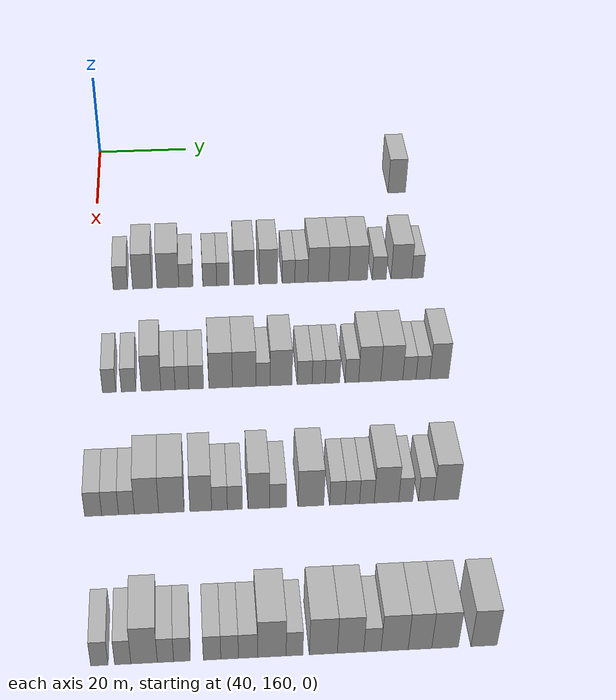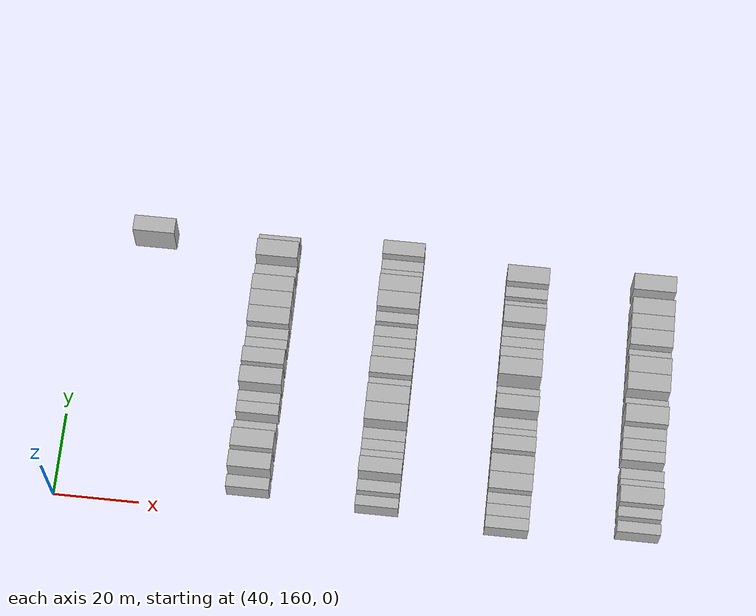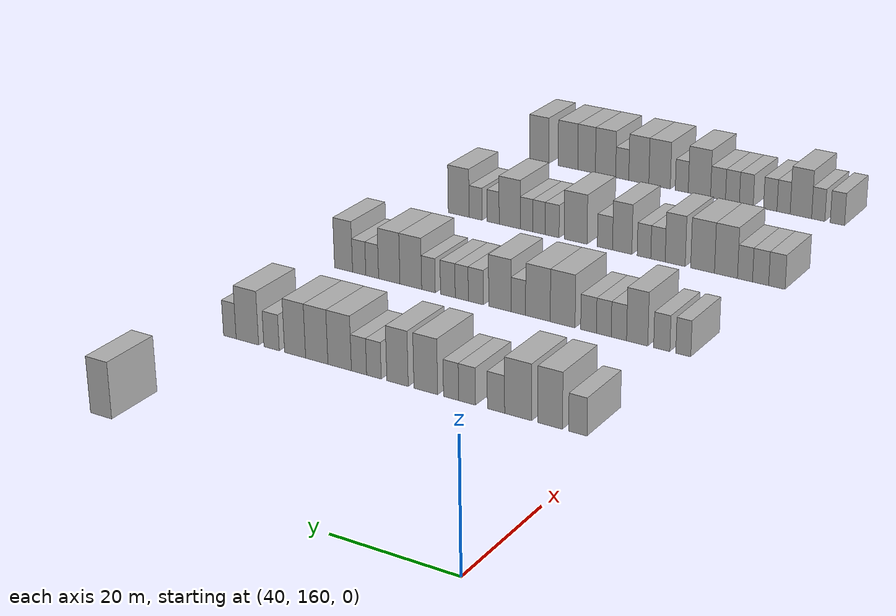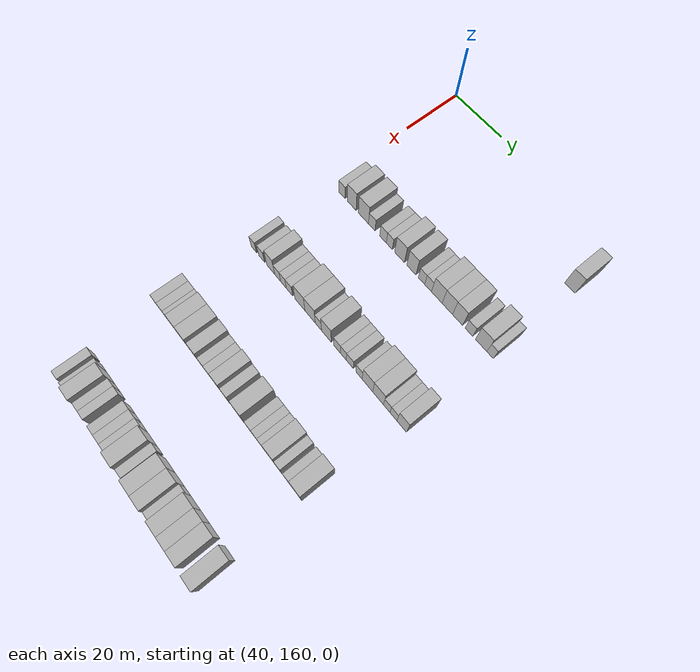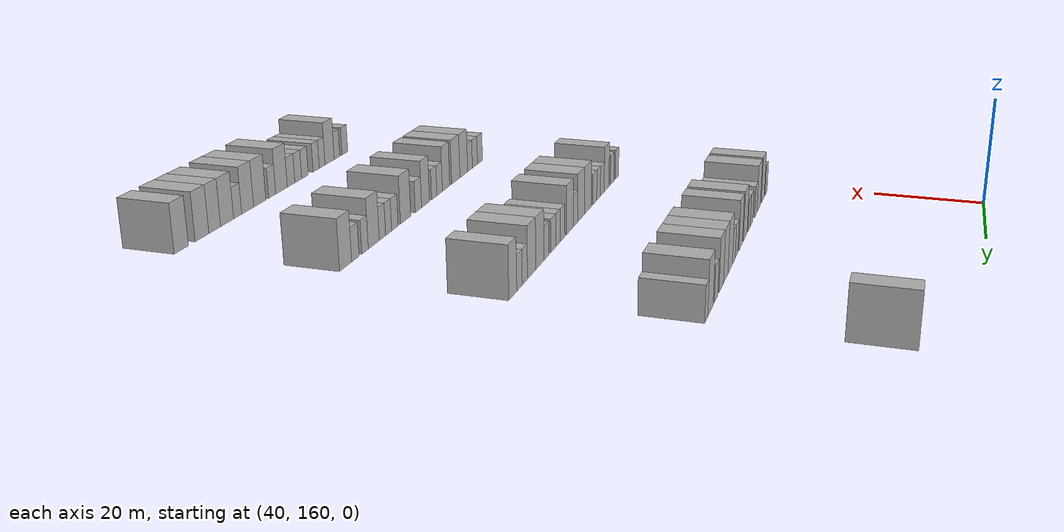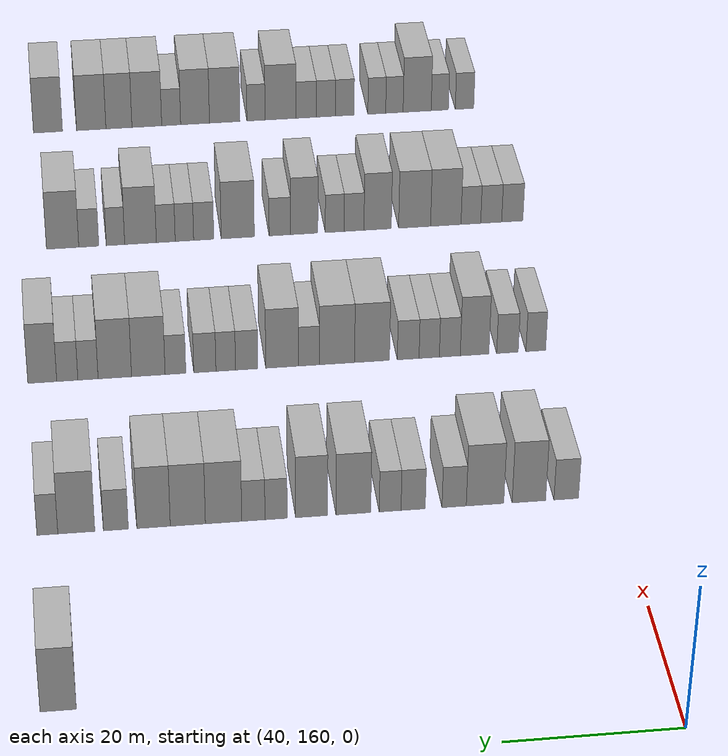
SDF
<sdf version="1.6">
 <world name="default">
  <model name="building_394">
   <static>1</static>
   <pose>55.0000 226.9714 0 0.000000 0.000000 0.000000</pose>
   <link name="link">
    <pose>0 0 4.50 0 0 0</pose>
    <collision name="collision"><geometry><box><size>10.0000 3.9252 9.0000</size></box></geometry></collision>
    <visual name="visual">
     <cast_shadows>0</cast_shadows>
     <geometry><box><size>10.0000 3.9252 9.0000</size></box></geometry>
     <material>
      <script>
       <uri>model://HANNAS_wall/materials/scripts</uri>
       <uri>model://HANNAS_wall/materials/textures</uri>
       <name>vrc/HANNAS_wall</name>
      </script>
     </material>
    </visual>
   </link>
  </model>
  <model name="building_606">
   <static>1</static>
   <pose>85.0000 165.7432 0 0.000000 0.000000 0.000000</pose>
   <link name="link">
    <pose>0 0 3.00 0 0 0</pose>
    <collision name="collision"><geometry><box><size>10.0000 2.9503 6.0000</size></box></geometry></collision>
    <visual name="visual">
     <cast_shadows>0</cast_shadows>
     <geometry><box><size>10.0000 2.9503 6.0000</size></box></geometry>
     <material>
      <script>
       <uri>model://HANNAS_wall/materials/scripts</uri>
       <uri>model://HANNAS_wall/materials/textures</uri>
       <name>vrc/HANNAS_wall</name>
      </script>
     </material>
    </visual>
   </link>
  </model>
  <model name="building_607">
   <static>1</static>
   <pose>85.0000 170.2305 0 0.000000 0.000000 0.000000</pose>
   <link name="link">
    <pose>0 0 4.50 0 0 0</pose>
    <collision name="collision"><geometry><box><size>10.0000 4.0242 9.0000</size></box></geometry></collision>
    <visual name="visual">
     <cast_shadows>0</cast_shadows>
     <geometry><box><size>10.0000 4.0242 9.0000</size></box></geometry>
     <material>
      <script>
       <uri>model://HANNAS_wall/materials/scripts</uri>
       <uri>model://HANNAS_wall/materials/textures</uri>
       <name>vrc/HANNAS_wall</name>
      </script>
     </material>
    </visual>
   </link>
  </model>
  <model name="building_608">
   <static>1</static>
   <pose>85.0000 175.4877 0 0.000000 0.000000 0.000000</pose>
   <link name="link">
    <pose>0 0 4.50 0 0 0</pose>
    <collision name="collision"><geometry><box><size>10.0000 4.4902 9.0000</size></box></geometry></collision>
    <visual name="visual">
     <cast_shadows>0</cast_shadows>
     <geometry><box><size>10.0000 4.4902 9.0000</size></box></geometry>
     <material>
      <script>
       <uri>model://HANNAS_wall/materials/scripts</uri>
       <uri>model://HANNAS_wall/materials/textures</uri>
       <name>vrc/HANNAS_wall</name>
      </script>
     </material>
    </visual>
   </link>
  </model>
  <model name="building_609">
   <static>1</static>
   <pose>85.0000 179.1829 0 0.000000 0.000000 0.000000</pose>
   <link name="link">
    <pose>0 0 3.00 0 0 0</pose>
    <collision name="collision"><geometry><box><size>10.0000 2.9001 6.0000</size></box></geometry></collision>
    <visual name="visual">
     <cast_shadows>0</cast_shadows>
     <geometry><box><size>10.0000 2.9001 6.0000</size></box></geometry>
     <material>
      <script>
       <uri>model://HANNAS_wall/materials/scripts</uri>
       <uri>model://HANNAS_wall/materials/textures</uri>
       <name>vrc/HANNAS_wall</name>
      </script>
     </material>
    </visual>
   </link>
  </model>
  <model name="building_610">
   <static>1</static>
   <pose>85.0000 184.0726 0 0.000000 0.000000 0.000000</pose>
   <link name="link">
    <pose>0 0 3.00 0 0 0</pose>
    <collision name="collision"><geometry><box><size>10.0000 2.8794 6.0000</size></box></geometry></collision>
    <visual name="visual">
     <cast_shadows>0</cast_shadows>
     <geometry><box><size>10.0000 2.8794 6.0000</size></box></geometry>
     <material>
      <script>
       <uri>model://HANNAS_wall/materials/scripts</uri>
       <uri>model://HANNAS_wall/materials/textures</uri>
       <name>vrc/HANNAS_wall</name>
      </script>
     </material>
    </visual>
   </link>
  </model>
  <model name="building_611">
   <static>1</static>
   <pose>85.0000 186.8120 0 0.000000 0.000000 0.000000</pose>
   <link name="link">
    <pose>0 0 3.00 0 0 0</pose>
    <collision name="collision"><geometry><box><size>10.0000 2.5993 6.0000</size></box></geometry></collision>
    <visual name="visual">
     <cast_shadows>0</cast_shadows>
     <geometry><box><size>10.0000 2.5993 6.0000</size></box></geometry>
     <material>
      <script>
       <uri>model://HANNAS_wall/materials/scripts</uri>
       <uri>model://HANNAS_wall/materials/textures</uri>
       <name>vrc/HANNAS_wall</name>
      </script>
     </material>
    </visual>
   </link>
  </model>
  <model name="building_612">
   <static>1</static>
   <pose>85.0000 191.1783 0 0.000000 0.000000 0.000000</pose>
   <link name="link">
    <pose>0 0 4.50 0 0 0</pose>
    <collision name="collision"><geometry><box><size>10.0000 4.1332 9.0000</size></box></geometry></collision>
    <visual name="visual">
     <cast_shadows>0</cast_shadows>
     <geometry><box><size>10.0000 4.1332 9.0000</size></box></geometry>
     <material>
      <script>
       <uri>model://HANNAS_wall/materials/scripts</uri>
       <uri>model://HANNAS_wall/materials/textures</uri>
       <name>vrc/HANNAS_wall</name>
      </script>
     </material>
    </visual>
   </link>
  </model>
  <model name="building_613">
   <static>1</static>
   <pose>85.0000 196.1357 0 0.000000 0.000000 0.000000</pose>
   <link name="link">
    <pose>0 0 4.50 0 0 0</pose>
    <collision name="collision"><geometry><box><size>10.0000 3.7818 9.0000</size></box></geometry></collision>
    <visual name="visual">
     <cast_shadows>0</cast_shadows>
     <geometry><box><size>10.0000 3.7818 9.0000</size></box></geometry>
     <material>
      <script>
       <uri>model://HANNAS_wall/materials/scripts</uri>
       <uri>model://HANNAS_wall/materials/textures</uri>
       <name>vrc/HANNAS_wall</name>
      </script>
     </material>
    </visual>
   </link>
  </model>
  <model name="building_614">
   <static>1</static>
   <pose>85.0000 200.3365 0 0.000000 0.000000 0.000000</pose>
   <link name="link">
    <pose>0 0 3.00 0 0 0</pose>
    <collision name="collision"><geometry><box><size>10.0000 2.6197 6.0000</size></box></geometry></collision>
    <visual name="visual">
     <cast_shadows>0</cast_shadows>
     <geometry><box><size>10.0000 2.6197 6.0000</size></box></geometry>
     <material>
      <script>
       <uri>model://HANNAS_wall/materials/scripts</uri>
       <uri>model://HANNAS_wall/materials/textures</uri>
       <name>vrc/HANNAS_wall</name>
      </script>
     </material>
    </visual>
   </link>
  </model>
  <model name="building_615">
   <static>1</static>
   <pose>85.0000 203.0154 0 0.000000 0.000000 0.000000</pose>
   <link name="link">
    <pose>0 0 3.00 0 0 0</pose>
    <collision name="collision"><geometry><box><size>10.0000 2.7382 6.0000</size></box></geometry></collision>
    <visual name="visual">
     <cast_shadows>0</cast_shadows>
     <geometry><box><size>10.0000 2.7382 6.0000</size></box></geometry>
     <material>
      <script>
       <uri>model://HANNAS_wall/materials/scripts</uri>
       <uri>model://HANNAS_wall/materials/textures</uri>
       <name>vrc/HANNAS_wall</name>
      </script>
     </material>
    </visual>
   </link>
  </model>
  <model name="building_616">
   <static>1</static>
   <pose>85.0000 206.5257 0 0.000000 0.000000 0.000000</pose>
   <link name="link">
    <pose>0 0 4.50 0 0 0</pose>
    <collision name="collision"><geometry><box><size>10.0000 4.2824 9.0000</size></box></geometry></collision>
    <visual name="visual">
     <cast_shadows>0</cast_shadows>
     <geometry><box><size>10.0000 4.2824 9.0000</size></box></geometry>
     <material>
      <script>
       <uri>model://HANNAS_wall/materials/scripts</uri>
       <uri>model://HANNAS_wall/materials/textures</uri>
       <name>vrc/HANNAS_wall</name>
      </script>
     </material>
    </visual>
   </link>
  </model>
  <model name="building_617">
   <static>1</static>
   <pose>85.0000 210.7302 0 0.000000 0.000000 0.000000</pose>
   <link name="link">
    <pose>0 0 4.50 0 0 0</pose>
    <collision name="collision"><geometry><box><size>10.0000 4.1267 9.0000</size></box></geometry></collision>
    <visual name="visual">
     <cast_shadows>0</cast_shadows>
     <geometry><box><size>10.0000 4.1267 9.0000</size></box></geometry>
     <material>
      <script>
       <uri>model://HANNAS_wall/materials/scripts</uri>
       <uri>model://HANNAS_wall/materials/textures</uri>
       <name>vrc/HANNAS_wall</name>
      </script>
     </material>
    </visual>
   </link>
  </model>
  <model name="building_618">
   <static>1</static>
   <pose>85.0000 214.7539 0 0.000000 0.000000 0.000000</pose>
   <link name="link">
    <pose>0 0 4.50 0 0 0</pose>
    <collision name="collision"><geometry><box><size>10.0000 3.9207 9.0000</size></box></geometry></collision>
    <visual name="visual">
     <cast_shadows>0</cast_shadows>
     <geometry><box><size>10.0000 3.9207 9.0000</size></box></geometry>
     <material>
      <script>
       <uri>model://HANNAS_wall/materials/scripts</uri>
       <uri>model://HANNAS_wall/materials/textures</uri>
       <name>vrc/HANNAS_wall</name>
      </script>
     </material>
    </visual>
   </link>
  </model>
  <model name="building_619">
   <static>1</static>
   <pose>85.0000 219.1729 0 0.000000 0.000000 0.000000</pose>
   <link name="link">
    <pose>0 0 3.00 0 0 0</pose>
    <collision name="collision"><geometry><box><size>10.0000 2.9173 6.0000</size></box></geometry></collision>
    <visual name="visual">
     <cast_shadows>0</cast_shadows>
     <geometry><box><size>10.0000 2.9173 6.0000</size></box></geometry>
     <material>
      <script>
       <uri>model://HANNAS_wall/materials/scripts</uri>
       <uri>model://HANNAS_wall/materials/textures</uri>
       <name>vrc/HANNAS_wall</name>
      </script>
     </material>
    </visual>
   </link>
  </model>
  <model name="building_620">
   <static>1</static>
   <pose>85.0000 223.7916 0 0.000000 0.000000 0.000000</pose>
   <link name="link">
    <pose>0 0 4.50 0 0 0</pose>
    <collision name="collision"><geometry><box><size>10.0000 4.3200 9.0000</size></box></geometry></collision>
    <visual name="visual">
     <cast_shadows>0</cast_shadows>
     <geometry><box><size>10.0000 4.3200 9.0000</size></box></geometry>
     <material>
      <script>
       <uri>model://HANNAS_wall/materials/scripts</uri>
       <uri>model://HANNAS_wall/materials/textures</uri>
       <name>vrc/HANNAS_wall</name>
      </script>
     </material>
    </visual>
   </link>
  </model>
  <model name="building_621">
   <static>1</static>
   <pose>85.0000 227.1658 0 0.000000 0.000000 0.000000</pose>
   <link name="link">
    <pose>0 0 3.00 0 0 0</pose>
    <collision name="collision"><geometry><box><size>10.0000 2.4284 6.0000</size></box></geometry></collision>
    <visual name="visual">
     <cast_shadows>0</cast_shadows>
     <geometry><box><size>10.0000 2.4284 6.0000</size></box></geometry>
     <material>
      <script>
       <uri>model://HANNAS_wall/materials/scripts</uri>
       <uri>model://HANNAS_wall/materials/textures</uri>
       <name>vrc/HANNAS_wall</name>
      </script>
     </material>
    </visual>
   </link>
  </model>
  <model name="building_825">
   <static>1</static>
   <pose>115.0000 164.1774 0 0.000000 0.000000 0.000000</pose>
   <link name="link">
    <pose>0 0 3.00 0 0 0</pose>
    <collision name="collision"><geometry><box><size>10.0000 2.5332 6.0000</size></box></geometry></collision>
    <visual name="visual">
     <cast_shadows>0</cast_shadows>
     <geometry><box><size>10.0000 2.5332 6.0000</size></box></geometry>
     <material>
      <script>
       <uri>model://HANNAS_wall/materials/scripts</uri>
       <uri>model://HANNAS_wall/materials/textures</uri>
       <name>vrc/HANNAS_wall</name>
      </script>
     </material>
    </visual>
   </link>
  </model>
  <model name="building_826">
   <static>1</static>
   <pose>115.0000 167.8308 0 0.000000 0.000000 0.000000</pose>
   <link name="link">
    <pose>0 0 3.00 0 0 0</pose>
    <collision name="collision"><geometry><box><size>10.0000 2.7736 6.0000</size></box></geometry></collision>
    <visual name="visual">
     <cast_shadows>0</cast_shadows>
     <geometry><box><size>10.0000 2.7736 6.0000</size></box></geometry>
     <material>
      <script>
       <uri>model://HANNAS_wall/materials/scripts</uri>
       <uri>model://HANNAS_wall/materials/textures</uri>
       <name>vrc/HANNAS_wall</name>
      </script>
     </material>
    </visual>
   </link>
  </model>
  <model name="building_827">
   <static>1</static>
   <pose>115.0000 172.0556 0 0.000000 0.000000 0.000000</pose>
   <link name="link">
    <pose>0 0 4.50 0 0 0</pose>
    <collision name="collision"><geometry><box><size>10.0000 3.6760 9.0000</size></box></geometry></collision>
    <visual name="visual">
     <cast_shadows>0</cast_shadows>
     <geometry><box><size>10.0000 3.6760 9.0000</size></box></geometry>
     <material>
      <script>
       <uri>model://HANNAS_wall/materials/scripts</uri>
       <uri>model://HANNAS_wall/materials/textures</uri>
       <name>vrc/HANNAS_wall</name>
      </script>
     </material>
    </visual>
   </link>
  </model>
  <model name="building_828">
   <static>1</static>
   <pose>115.0000 175.2334 0 0.000000 0.000000 0.000000</pose>
   <link name="link">
    <pose>0 0 3.00 0 0 0</pose>
    <collision name="collision"><geometry><box><size>10.0000 2.6795 6.0000</size></box></geometry></collision>
    <visual name="visual">
     <cast_shadows>0</cast_shadows>
     <geometry><box><size>10.0000 2.6795 6.0000</size></box></geometry>
     <material>
      <script>
       <uri>model://HANNAS_wall/materials/scripts</uri>
       <uri>model://HANNAS_wall/materials/textures</uri>
       <name>vrc/HANNAS_wall</name>
      </script>
     </material>
    </visual>
   </link>
  </model>
  <model name="building_829">
   <static>1</static>
   <pose>115.0000 177.8731 0 0.000000 0.000000 0.000000</pose>
   <link name="link">
    <pose>0 0 3.00 0 0 0</pose>
    <collision name="collision"><geometry><box><size>10.0000 2.5999 6.0000</size></box></geometry></collision>
    <visual name="visual">
     <cast_shadows>0</cast_shadows>
     <geometry><box><size>10.0000 2.5999 6.0000</size></box></geometry>
     <material>
      <script>
       <uri>model://HANNAS_wall/materials/scripts</uri>
       <uri>model://HANNAS_wall/materials/textures</uri>
       <name>vrc/HANNAS_wall</name>
      </script>
     </material>
    </visual>
   </link>
  </model>
  <model name="building_830">
   <static>1</static>
   <pose>115.0000 180.5639 0 0.000000 0.000000 0.000000</pose>
   <link name="link">
    <pose>0 0 3.00 0 0 0</pose>
    <collision name="collision"><geometry><box><size>10.0000 2.7818 6.0000</size></box></geometry></collision>
    <visual name="visual">
     <cast_shadows>0</cast_shadows>
     <geometry><box><size>10.0000 2.7818 6.0000</size></box></geometry>
     <material>
      <script>
       <uri>model://HANNAS_wall/materials/scripts</uri>
       <uri>model://HANNAS_wall/materials/textures</uri>
       <name>vrc/HANNAS_wall</name>
      </script>
     </material>
    </visual>
   </link>
  </model>
  <model name="building_831">
   <static>1</static>
   <pose>115.0000 185.1797 0 0.000000 0.000000 0.000000</pose>
   <link name="link">
    <pose>0 0 4.50 0 0 0</pose>
    <collision name="collision"><geometry><box><size>10.0000 4.4497 9.0000</size></box></geometry></collision>
    <visual name="visual">
     <cast_shadows>0</cast_shadows>
     <geometry><box><size>10.0000 4.4497 9.0000</size></box></geometry>
     <material>
      <script>
       <uri>model://HANNAS_wall/materials/scripts</uri>
       <uri>model://HANNAS_wall/materials/textures</uri>
       <name>vrc/HANNAS_wall</name>
      </script>
     </material>
    </visual>
   </link>
  </model>
  <model name="building_832">
   <static>1</static>
   <pose>115.0000 189.6412 0 0.000000 0.000000 0.000000</pose>
   <link name="link">
    <pose>0 0 4.50 0 0 0</pose>
    <collision name="collision"><geometry><box><size>10.0000 4.4733 9.0000</size></box></geometry></collision>
    <visual name="visual">
     <cast_shadows>0</cast_shadows>
     <geometry><box><size>10.0000 4.4733 9.0000</size></box></geometry>
     <material>
      <script>
       <uri>model://HANNAS_wall/materials/scripts</uri>
       <uri>model://HANNAS_wall/materials/textures</uri>
       <name>vrc/HANNAS_wall</name>
      </script>
     </material>
    </visual>
   </link>
  </model>
  <model name="building_833">
   <static>1</static>
   <pose>115.0000 193.2187 0 0.000000 0.000000 0.000000</pose>
   <link name="link">
    <pose>0 0 3.00 0 0 0</pose>
    <collision name="collision"><geometry><box><size>10.0000 2.6816 6.0000</size></box></geometry></collision>
    <visual name="visual">
     <cast_shadows>0</cast_shadows>
     <geometry><box><size>10.0000 2.6816 6.0000</size></box></geometry>
     <material>
      <script>
       <uri>model://HANNAS_wall/materials/scripts</uri>
       <uri>model://HANNAS_wall/materials/textures</uri>
       <name>vrc/HANNAS_wall</name>
      </script>
     </material>
    </visual>
   </link>
  </model>
  <model name="building_834">
   <static>1</static>
   <pose>115.0000 196.6290 0 0.000000 0.000000 0.000000</pose>
   <link name="link">
    <pose>0 0 4.50 0 0 0</pose>
    <collision name="collision"><geometry><box><size>10.0000 4.1389 9.0000</size></box></geometry></collision>
    <visual name="visual">
     <cast_shadows>0</cast_shadows>
     <geometry><box><size>10.0000 4.1389 9.0000</size></box></geometry>
     <material>
      <script>
       <uri>model://HANNAS_wall/materials/scripts</uri>
       <uri>model://HANNAS_wall/materials/textures</uri>
       <name>vrc/HANNAS_wall</name>
      </script>
     </material>
    </visual>
   </link>
  </model>
  <model name="building_835">
   <static>1</static>
   <pose>115.0000 201.1109 0 0.000000 0.000000 0.000000</pose>
   <link name="link">
    <pose>0 0 3.00 0 0 0</pose>
    <collision name="collision"><geometry><box><size>10.0000 2.8248 6.0000</size></box></geometry></collision>
    <visual name="visual">
     <cast_shadows>0</cast_shadows>
     <geometry><box><size>10.0000 2.8248 6.0000</size></box></geometry>
     <material>
      <script>
       <uri>model://HANNAS_wall/materials/scripts</uri>
       <uri>model://HANNAS_wall/materials/textures</uri>
       <name>vrc/HANNAS_wall</name>
      </script>
     </material>
    </visual>
   </link>
  </model>
  <model name="building_836">
   <static>1</static>
   <pose>115.0000 203.7615 0 0.000000 0.000000 0.000000</pose>
   <link name="link">
    <pose>0 0 3.00 0 0 0</pose>
    <collision name="collision"><geometry><box><size>10.0000 2.4764 6.0000</size></box></geometry></collision>
    <visual name="visual">
     <cast_shadows>0</cast_shadows>
     <geometry><box><size>10.0000 2.4764 6.0000</size></box></geometry>
     <material>
      <script>
       <uri>model://HANNAS_wall/materials/scripts</uri>
       <uri>model://HANNAS_wall/materials/textures</uri>
       <name>vrc/HANNAS_wall</name>
      </script>
     </material>
    </visual>
   </link>
  </model>
  <model name="building_837">
   <static>1</static>
   <pose>115.0000 206.4011 0 0.000000 0.000000 0.000000</pose>
   <link name="link">
    <pose>0 0 3.00 0 0 0</pose>
    <collision name="collision"><geometry><box><size>10.0000 2.8028 6.0000</size></box></geometry></collision>
    <visual name="visual">
     <cast_shadows>0</cast_shadows>
     <geometry><box><size>10.0000 2.8028 6.0000</size></box></geometry>
     <material>
      <script>
       <uri>model://HANNAS_wall/materials/scripts</uri>
       <uri>model://HANNAS_wall/materials/textures</uri>
       <name>vrc/HANNAS_wall</name>
      </script>
     </material>
    </visual>
   </link>
  </model>
  <model name="building_838">
   <static>1</static>
   <pose>115.0000 210.1084 0 0.000000 0.000000 0.000000</pose>
   <link name="link">
    <pose>0 0 3.00 0 0 0</pose>
    <collision name="collision"><geometry><box><size>10.0000 2.6118 6.0000</size></box></geometry></collision>
    <visual name="visual">
     <cast_shadows>0</cast_shadows>
     <geometry><box><size>10.0000 2.6118 6.0000</size></box></geometry>
     <material>
      <script>
       <uri>model://HANNAS_wall/materials/scripts</uri>
       <uri>model://HANNAS_wall/materials/textures</uri>
       <name>vrc/HANNAS_wall</name>
      </script>
     </material>
    </visual>
   </link>
  </model>
  <model name="building_839">
   <static>1</static>
   <pose>115.0000 213.5273 0 0.000000 0.000000 0.000000</pose>
   <link name="link">
    <pose>0 0 4.50 0 0 0</pose>
    <collision name="collision"><geometry><box><size>10.0000 4.2261 9.0000</size></box></geometry></collision>
    <visual name="visual">
     <cast_shadows>0</cast_shadows>
     <geometry><box><size>10.0000 4.2261 9.0000</size></box></geometry>
     <material>
      <script>
       <uri>model://HANNAS_wall/materials/scripts</uri>
       <uri>model://HANNAS_wall/materials/textures</uri>
       <name>vrc/HANNAS_wall</name>
      </script>
     </material>
    </visual>
   </link>
  </model>
  <model name="building_840">
   <static>1</static>
   <pose>115.0000 217.7419 0 0.000000 0.000000 0.000000</pose>
   <link name="link">
    <pose>0 0 4.50 0 0 0</pose>
    <collision name="collision"><geometry><box><size>10.0000 4.2031 9.0000</size></box></geometry></collision>
    <visual name="visual">
     <cast_shadows>0</cast_shadows>
     <geometry><box><size>10.0000 4.2031 9.0000</size></box></geometry>
     <material>
      <script>
       <uri>model://HANNAS_wall/materials/scripts</uri>
       <uri>model://HANNAS_wall/materials/textures</uri>
       <name>vrc/HANNAS_wall</name>
      </script>
     </material>
    </visual>
   </link>
  </model>
  <model name="building_841">
   <static>1</static>
   <pose>115.0000 221.1110 0 0.000000 0.000000 0.000000</pose>
   <link name="link">
    <pose>0 0 3.00 0 0 0</pose>
    <collision name="collision"><geometry><box><size>10.0000 2.5350 6.0000</size></box></geometry></collision>
    <visual name="visual">
     <cast_shadows>0</cast_shadows>
     <geometry><box><size>10.0000 2.5350 6.0000</size></box></geometry>
     <material>
      <script>
       <uri>model://HANNAS_wall/materials/scripts</uri>
       <uri>model://HANNAS_wall/materials/textures</uri>
       <name>vrc/HANNAS_wall</name>
      </script>
     </material>
    </visual>
   </link>
  </model>
  <model name="building_842">
   <static>1</static>
   <pose>115.0000 223.7000 0 0.000000 0.000000 0.000000</pose>
   <link name="link">
    <pose>0 0 3.00 0 0 0</pose>
    <collision name="collision"><geometry><box><size>10.0000 2.6429 6.0000</size></box></geometry></collision>
    <visual name="visual">
     <cast_shadows>0</cast_shadows>
     <geometry><box><size>10.0000 2.6429 6.0000</size></box></geometry>
     <material>
      <script>
       <uri>model://HANNAS_wall/materials/scripts</uri>
       <uri>model://HANNAS_wall/materials/textures</uri>
       <name>vrc/HANNAS_wall</name>
      </script>
     </material>
    </visual>
   </link>
  </model>
  <model name="building_843">
   <static>1</static>
   <pose>115.0000 226.8285 0 0.000000 0.000000 0.000000</pose>
   <link name="link">
    <pose>0 0 4.50 0 0 0</pose>
    <collision name="collision"><geometry><box><size>10.0000 3.6141 9.0000</size></box></geometry></collision>
    <visual name="visual">
     <cast_shadows>0</cast_shadows>
     <geometry><box><size>10.0000 3.6141 9.0000</size></box></geometry>
     <material>
      <script>
       <uri>model://HANNAS_wall/materials/scripts</uri>
       <uri>model://HANNAS_wall/materials/textures</uri>
       <name>vrc/HANNAS_wall</name>
      </script>
     </material>
    </visual>
   </link>
  </model>
  <model name="building_1042">
   <static>1</static>
   <pose>145.0000 162.1882 0 0.000000 0.000000 0.000000</pose>
   <link name="link">
    <pose>0 0 3.00 0 0 0</pose>
    <collision name="collision"><geometry><box><size>10.0000 2.9171 6.0000</size></box></geometry></collision>
    <visual name="visual">
     <cast_shadows>0</cast_shadows>
     <geometry><box><size>10.0000 2.9171 6.0000</size></box></geometry>
     <material>
      <script>
       <uri>model://HANNAS_wall/materials/scripts</uri>
       <uri>model://HANNAS_wall/materials/textures</uri>
       <name>vrc/HANNAS_wall</name>
      </script>
     </material>
    </visual>
   </link>
  </model>
  <model name="building_1043">
   <static>1</static>
   <pose>145.0000 165.0874 0 0.000000 0.000000 0.000000</pose>
   <link name="link">
    <pose>0 0 3.00 0 0 0</pose>
    <collision name="collision"><geometry><box><size>10.0000 2.8814 6.0000</size></box></geometry></collision>
    <visual name="visual">
     <cast_shadows>0</cast_shadows>
     <geometry><box><size>10.0000 2.8814 6.0000</size></box></geometry>
     <material>
      <script>
       <uri>model://HANNAS_wall/materials/scripts</uri>
       <uri>model://HANNAS_wall/materials/textures</uri>
       <name>vrc/HANNAS_wall</name>
      </script>
     </material>
    </visual>
   </link>
  </model>
  <model name="building_1044">
   <static>1</static>
   <pose>145.0000 167.8782 0 0.000000 0.000000 0.000000</pose>
   <link name="link">
    <pose>0 0 3.00 0 0 0</pose>
    <collision name="collision"><geometry><box><size>10.0000 2.7003 6.0000</size></box></geometry></collision>
    <visual name="visual">
     <cast_shadows>0</cast_shadows>
     <geometry><box><size>10.0000 2.7003 6.0000</size></box></geometry>
     <material>
      <script>
       <uri>model://HANNAS_wall/materials/scripts</uri>
       <uri>model://HANNAS_wall/materials/textures</uri>
       <name>vrc/HANNAS_wall</name>
      </script>
     </material>
    </visual>
   </link>
  </model>
  <model name="building_1045">
   <static>1</static>
   <pose>145.0000 171.3136 0 0.000000 0.000000 0.000000</pose>
   <link name="link">
    <pose>0 0 4.50 0 0 0</pose>
    <collision name="collision"><geometry><box><size>10.0000 4.1704 9.0000</size></box></geometry></collision>
    <visual name="visual">
     <cast_shadows>0</cast_shadows>
     <geometry><box><size>10.0000 4.1704 9.0000</size></box></geometry>
     <material>
      <script>
       <uri>model://HANNAS_wall/materials/scripts</uri>
       <uri>model://HANNAS_wall/materials/textures</uri>
       <name>vrc/HANNAS_wall</name>
      </script>
     </material>
    </visual>
   </link>
  </model>
  <model name="building_1046">
   <static>1</static>
   <pose>145.0000 175.5829 0 0.000000 0.000000 0.000000</pose>
   <link name="link">
    <pose>0 0 4.50 0 0 0</pose>
    <collision name="collision"><geometry><box><size>10.0000 4.3682 9.0000</size></box></geometry></collision>
    <visual name="visual">
     <cast_shadows>0</cast_shadows>
     <geometry><box><size>10.0000 4.3682 9.0000</size></box></geometry>
     <material>
      <script>
       <uri>model://HANNAS_wall/materials/scripts</uri>
       <uri>model://HANNAS_wall/materials/textures</uri>
       <name>vrc/HANNAS_wall</name>
      </script>
     </material>
    </visual>
   </link>
  </model>
  <model name="building_1047">
   <static>1</static>
   <pose>145.0000 180.6316 0 0.000000 0.000000 0.000000</pose>
   <link name="link">
    <pose>0 0 4.50 0 0 0</pose>
    <collision name="collision"><geometry><box><size>10.0000 3.7293 9.0000</size></box></geometry></collision>
    <visual name="visual">
     <cast_shadows>0</cast_shadows>
     <geometry><box><size>10.0000 3.7293 9.0000</size></box></geometry>
     <material>
      <script>
       <uri>model://HANNAS_wall/materials/scripts</uri>
       <uri>model://HANNAS_wall/materials/textures</uri>
       <name>vrc/HANNAS_wall</name>
      </script>
     </material>
    </visual>
   </link>
  </model>
  <model name="building_1048">
   <static>1</static>
   <pose>145.0000 183.8452 0 0.000000 0.000000 0.000000</pose>
   <link name="link">
    <pose>0 0 3.00 0 0 0</pose>
    <collision name="collision"><geometry><box><size>10.0000 2.6979 6.0000</size></box></geometry></collision>
    <visual name="visual">
     <cast_shadows>0</cast_shadows>
     <geometry><box><size>10.0000 2.6979 6.0000</size></box></geometry>
     <material>
      <script>
       <uri>model://HANNAS_wall/materials/scripts</uri>
       <uri>model://HANNAS_wall/materials/textures</uri>
       <name>vrc/HANNAS_wall</name>
      </script>
     </material>
    </visual>
   </link>
  </model>
  <model name="building_1049">
   <static>1</static>
   <pose>145.0000 186.4806 0 0.000000 0.000000 0.000000</pose>
   <link name="link">
    <pose>0 0 3.00 0 0 0</pose>
    <collision name="collision"><geometry><box><size>10.0000 2.5728 6.0000</size></box></geometry></collision>
    <visual name="visual">
     <cast_shadows>0</cast_shadows>
     <geometry><box><size>10.0000 2.5728 6.0000</size></box></geometry>
     <material>
      <script>
       <uri>model://HANNAS_wall/materials/scripts</uri>
       <uri>model://HANNAS_wall/materials/textures</uri>
       <name>vrc/HANNAS_wall</name>
      </script>
     </material>
    </visual>
   </link>
  </model>
  <model name="building_1050">
   <static>1</static>
   <pose>145.0000 190.6179 0 0.000000 0.000000 0.000000</pose>
   <link name="link">
    <pose>0 0 4.50 0 0 0</pose>
    <collision name="collision"><geometry><box><size>10.0000 3.7019 9.0000</size></box></geometry></collision>
    <visual name="visual">
     <cast_shadows>0</cast_shadows>
     <geometry><box><size>10.0000 3.7019 9.0000</size></box></geometry>
     <material>
      <script>
       <uri>model://HANNAS_wall/materials/scripts</uri>
       <uri>model://HANNAS_wall/materials/textures</uri>
       <name>vrc/HANNAS_wall</name>
      </script>
     </material>
    </visual>
   </link>
  </model>
  <model name="building_1051">
   <static>1</static>
   <pose>145.0000 193.9264 0 0.000000 0.000000 0.000000</pose>
   <link name="link">
    <pose>0 0 3.00 0 0 0</pose>
    <collision name="collision"><geometry><box><size>10.0000 2.9151 6.0000</size></box></geometry></collision>
    <visual name="visual">
     <cast_shadows>0</cast_shadows>
     <geometry><box><size>10.0000 2.9151 6.0000</size></box></geometry>
     <material>
      <script>
       <uri>model://HANNAS_wall/materials/scripts</uri>
       <uri>model://HANNAS_wall/materials/textures</uri>
       <name>vrc/HANNAS_wall</name>
      </script>
     </material>
    </visual>
   </link>
  </model>
  <model name="building_1052">
   <static>1</static>
   <pose>145.0000 199.6255 0 0.000000 0.000000 0.000000</pose>
   <link name="link">
    <pose>0 0 4.50 0 0 0</pose>
    <collision name="collision"><geometry><box><size>10.0000 4.4830 9.0000</size></box></geometry></collision>
    <visual name="visual">
     <cast_shadows>0</cast_shadows>
     <geometry><box><size>10.0000 4.4830 9.0000</size></box></geometry>
     <material>
      <script>
       <uri>model://HANNAS_wall/materials/scripts</uri>
       <uri>model://HANNAS_wall/materials/textures</uri>
       <name>vrc/HANNAS_wall</name>
      </script>
     </material>
    </visual>
   </link>
  </model>
  <model name="building_1053">
   <static>1</static>
   <pose>145.0000 204.2259 0 0.000000 0.000000 0.000000</pose>
   <link name="link">
    <pose>0 0 3.00 0 0 0</pose>
    <collision name="collision"><geometry><box><size>10.0000 2.7179 6.0000</size></box></geometry></collision>
    <visual name="visual">
     <cast_shadows>0</cast_shadows>
     <geometry><box><size>10.0000 2.7179 6.0000</size></box></geometry>
     <material>
      <script>
       <uri>model://HANNAS_wall/materials/scripts</uri>
       <uri>model://HANNAS_wall/materials/textures</uri>
       <name>vrc/HANNAS_wall</name>
      </script>
     </material>
    </visual>
   </link>
  </model>
  <model name="building_1054">
   <static>1</static>
   <pose>145.0000 206.8266 0 0.000000 0.000000 0.000000</pose>
   <link name="link">
    <pose>0 0 3.00 0 0 0</pose>
    <collision name="collision"><geometry><box><size>10.0000 2.4833 6.0000</size></box></geometry></collision>
    <visual name="visual">
     <cast_shadows>0</cast_shadows>
     <geometry><box><size>10.0000 2.4833 6.0000</size></box></geometry>
     <material>
      <script>
       <uri>model://HANNAS_wall/materials/scripts</uri>
       <uri>model://HANNAS_wall/materials/textures</uri>
       <name>vrc/HANNAS_wall</name>
      </script>
     </material>
    </visual>
   </link>
  </model>
  <model name="building_1055">
   <static>1</static>
   <pose>145.0000 209.3391 0 0.000000 0.000000 0.000000</pose>
   <link name="link">
    <pose>0 0 3.00 0 0 0</pose>
    <collision name="collision"><geometry><box><size>10.0000 2.5416 6.0000</size></box></geometry></collision>
    <visual name="visual">
     <cast_shadows>0</cast_shadows>
     <geometry><box><size>10.0000 2.5416 6.0000</size></box></geometry>
     <material>
      <script>
       <uri>model://HANNAS_wall/materials/scripts</uri>
       <uri>model://HANNAS_wall/materials/textures</uri>
       <name>vrc/HANNAS_wall</name>
      </script>
     </material>
    </visual>
   </link>
  </model>
  <model name="building_1056">
   <static>1</static>
   <pose>145.0000 212.7390 0 0.000000 0.000000 0.000000</pose>
   <link name="link">
    <pose>0 0 4.50 0 0 0</pose>
    <collision name="collision"><geometry><box><size>10.0000 4.2582 9.0000</size></box></geometry></collision>
    <visual name="visual">
     <cast_shadows>0</cast_shadows>
     <geometry><box><size>10.0000 4.2582 9.0000</size></box></geometry>
     <material>
      <script>
       <uri>model://HANNAS_wall/materials/scripts</uri>
       <uri>model://HANNAS_wall/materials/textures</uri>
       <name>vrc/HANNAS_wall</name>
      </script>
     </material>
    </visual>
   </link>
  </model>
  <model name="building_1057">
   <static>1</static>
   <pose>145.0000 216.1029 0 0.000000 0.000000 0.000000</pose>
   <link name="link">
    <pose>0 0 3.00 0 0 0</pose>
    <collision name="collision"><geometry><box><size>10.0000 2.4695 6.0000</size></box></geometry></collision>
    <visual name="visual">
     <cast_shadows>0</cast_shadows>
     <geometry><box><size>10.0000 2.4695 6.0000</size></box></geometry>
     <material>
      <script>
       <uri>model://HANNAS_wall/materials/scripts</uri>
       <uri>model://HANNAS_wall/materials/textures</uri>
       <name>vrc/HANNAS_wall</name>
      </script>
     </material>
    </visual>
   </link>
  </model>
  <model name="building_1058">
   <static>1</static>
   <pose>145.0000 219.6802 0 0.000000 0.000000 0.000000</pose>
   <link name="link">
    <pose>0 0 3.00 0 0 0</pose>
    <collision name="collision"><geometry><box><size>10.0000 2.6851 6.0000</size></box></geometry></collision>
    <visual name="visual">
     <cast_shadows>0</cast_shadows>
     <geometry><box><size>10.0000 2.6851 6.0000</size></box></geometry>
     <material>
      <script>
       <uri>model://HANNAS_wall/materials/scripts</uri>
       <uri>model://HANNAS_wall/materials/textures</uri>
       <name>vrc/HANNAS_wall</name>
      </script>
     </material>
    </visual>
   </link>
  </model>
  <model name="building_1059">
   <static>1</static>
   <pose>145.0000 223.1822 0 0.000000 0.000000 0.000000</pose>
   <link name="link">
    <pose>0 0 4.50 0 0 0</pose>
    <collision name="collision"><geometry><box><size>10.0000 4.3189 9.0000</size></box></geometry></collision>
    <visual name="visual">
     <cast_shadows>0</cast_shadows>
     <geometry><box><size>10.0000 4.3189 9.0000</size></box></geometry>
     <material>
      <script>
       <uri>model://HANNAS_wall/materials/scripts</uri>
       <uri>model://HANNAS_wall/materials/textures</uri>
       <name>vrc/HANNAS_wall</name>
      </script>
     </material>
    </visual>
   </link>
  </model>
  <model name="building_1282">
   <static>1</static>
   <pose>175.0000 164.1596 0 0.000000 0.000000 0.000000</pose>
   <link name="link">
    <pose>0 0 3.00 0 0 0</pose>
    <collision name="collision"><geometry><box><size>10.0000 2.6842 6.0000</size></box></geometry></collision>
    <visual name="visual">
     <cast_shadows>0</cast_shadows>
     <geometry><box><size>10.0000 2.6842 6.0000</size></box></geometry>
     <material>
      <script>
       <uri>model://HANNAS_wall/materials/scripts</uri>
       <uri>model://HANNAS_wall/materials/textures</uri>
       <name>vrc/HANNAS_wall</name>
      </script>
     </material>
    </visual>
   </link>
  </model>
  <model name="building_1283">
   <static>1</static>
   <pose>175.0000 167.7578 0 0.000000 0.000000 0.000000</pose>
   <link name="link">
    <pose>0 0 3.00 0 0 0</pose>
    <collision name="collision"><geometry><box><size>10.0000 2.5122 6.0000</size></box></geometry></collision>
    <visual name="visual">
     <cast_shadows>0</cast_shadows>
     <geometry><box><size>10.0000 2.5122 6.0000</size></box></geometry>
     <material>
      <script>
       <uri>model://HANNAS_wall/materials/scripts</uri>
       <uri>model://HANNAS_wall/materials/textures</uri>
       <name>vrc/HANNAS_wall</name>
      </script>
     </material>
    </visual>
   </link>
  </model>
  <model name="building_1284">
   <static>1</static>
   <pose>175.0000 171.0576 0 0.000000 0.000000 0.000000</pose>
   <link name="link">
    <pose>0 0 4.50 0 0 0</pose>
    <collision name="collision"><geometry><box><size>10.0000 4.0875 9.0000</size></box></geometry></collision>
    <visual name="visual">
     <cast_shadows>0</cast_shadows>
     <geometry><box><size>10.0000 4.0875 9.0000</size></box></geometry>
     <material>
      <script>
       <uri>model://HANNAS_wall/materials/scripts</uri>
       <uri>model://HANNAS_wall/materials/textures</uri>
       <name>vrc/HANNAS_wall</name>
      </script>
     </material>
    </visual>
   </link>
  </model>
  <model name="building_1285">
   <static>1</static>
   <pose>175.0000 174.3629 0 0.000000 0.000000 0.000000</pose>
   <link name="link">
    <pose>0 0 3.00 0 0 0</pose>
    <collision name="collision"><geometry><box><size>10.0000 2.5231 6.0000</size></box></geometry></collision>
    <visual name="visual">
     <cast_shadows>0</cast_shadows>
     <geometry><box><size>10.0000 2.5231 6.0000</size></box></geometry>
     <material>
      <script>
       <uri>model://HANNAS_wall/materials/scripts</uri>
       <uri>model://HANNAS_wall/materials/textures</uri>
       <name>vrc/HANNAS_wall</name>
      </script>
     </material>
    </visual>
   </link>
  </model>
  <model name="building_1286">
   <static>1</static>
   <pose>175.0000 176.9214 0 0.000000 0.000000 0.000000</pose>
   <link name="link">
    <pose>0 0 3.00 0 0 0</pose>
    <collision name="collision"><geometry><box><size>10.0000 2.5939 6.0000</size></box></geometry></collision>
    <visual name="visual">
     <cast_shadows>0</cast_shadows>
     <geometry><box><size>10.0000 2.5939 6.0000</size></box></geometry>
     <material>
      <script>
       <uri>model://HANNAS_wall/materials/scripts</uri>
       <uri>model://HANNAS_wall/materials/textures</uri>
       <name>vrc/HANNAS_wall</name>
      </script>
     </material>
    </visual>
   </link>
  </model>
  <model name="building_1287">
   <static>1</static>
   <pose>175.0000 181.5738 0 0.000000 0.000000 0.000000</pose>
   <link name="link">
    <pose>0 0 3.00 0 0 0</pose>
    <collision name="collision"><geometry><box><size>10.0000 2.7108 6.0000</size></box></geometry></collision>
    <visual name="visual">
     <cast_shadows>0</cast_shadows>
     <geometry><box><size>10.0000 2.7108 6.0000</size></box></geometry>
     <material>
      <script>
       <uri>model://HANNAS_wall/materials/scripts</uri>
       <uri>model://HANNAS_wall/materials/textures</uri>
       <name>vrc/HANNAS_wall</name>
      </script>
     </material>
    </visual>
   </link>
  </model>
  <model name="building_1288">
   <static>1</static>
   <pose>175.0000 184.2955 0 0.000000 0.000000 0.000000</pose>
   <link name="link">
    <pose>0 0 3.00 0 0 0</pose>
    <collision name="collision"><geometry><box><size>10.0000 2.7326 6.0000</size></box></geometry></collision>
    <visual name="visual">
     <cast_shadows>0</cast_shadows>
     <geometry><box><size>10.0000 2.7326 6.0000</size></box></geometry>
     <material>
      <script>
       <uri>model://HANNAS_wall/materials/scripts</uri>
       <uri>model://HANNAS_wall/materials/textures</uri>
       <name>vrc/HANNAS_wall</name>
      </script>
     </material>
    </visual>
   </link>
  </model>
  <model name="building_1289">
   <static>1</static>
   <pose>175.0000 187.1412 0 0.000000 0.000000 0.000000</pose>
   <link name="link">
    <pose>0 0 3.00 0 0 0</pose>
    <collision name="collision"><geometry><box><size>10.0000 2.9587 6.0000</size></box></geometry></collision>
    <visual name="visual">
     <cast_shadows>0</cast_shadows>
     <geometry><box><size>10.0000 2.9587 6.0000</size></box></geometry>
     <material>
      <script>
       <uri>model://HANNAS_wall/materials/scripts</uri>
       <uri>model://HANNAS_wall/materials/textures</uri>
       <name>vrc/HANNAS_wall</name>
      </script>
     </material>
    </visual>
   </link>
  </model>
  <model name="building_1290">
   <static>1</static>
   <pose>175.0000 190.8504 0 0.000000 0.000000 0.000000</pose>
   <link name="link">
    <pose>0 0 4.50 0 0 0</pose>
    <collision name="collision"><geometry><box><size>10.0000 4.4597 9.0000</size></box></geometry></collision>
    <visual name="visual">
     <cast_shadows>0</cast_shadows>
     <geometry><box><size>10.0000 4.4597 9.0000</size></box></geometry>
     <material>
      <script>
       <uri>model://HANNAS_wall/materials/scripts</uri>
       <uri>model://HANNAS_wall/materials/textures</uri>
       <name>vrc/HANNAS_wall</name>
      </script>
     </material>
    </visual>
   </link>
  </model>
  <model name="building_1291">
   <static>1</static>
   <pose>175.0000 194.3885 0 0.000000 0.000000 0.000000</pose>
   <link name="link">
    <pose>0 0 3.00 0 0 0</pose>
    <collision name="collision"><geometry><box><size>10.0000 2.6165 6.0000</size></box></geometry></collision>
    <visual name="visual">
     <cast_shadows>0</cast_shadows>
     <geometry><box><size>10.0000 2.6165 6.0000</size></box></geometry>
     <material>
      <script>
       <uri>model://HANNAS_wall/materials/scripts</uri>
       <uri>model://HANNAS_wall/materials/textures</uri>
       <name>vrc/HANNAS_wall</name>
      </script>
     </material>
    </visual>
   </link>
  </model>
  <model name="building_1292">
   <static>1</static>
   <pose>175.0000 198.8905 0 0.000000 0.000000 0.000000</pose>
   <link name="link">
    <pose>0 0 4.50 0 0 0</pose>
    <collision name="collision"><geometry><box><size>10.0000 4.3874 9.0000</size></box></geometry></collision>
    <visual name="visual">
     <cast_shadows>0</cast_shadows>
     <geometry><box><size>10.0000 4.3874 9.0000</size></box></geometry>
     <material>
      <script>
       <uri>model://HANNAS_wall/materials/scripts</uri>
       <uri>model://HANNAS_wall/materials/textures</uri>
       <name>vrc/HANNAS_wall</name>
      </script>
     </material>
    </visual>
   </link>
  </model>
  <model name="building_1293">
   <static>1</static>
   <pose>175.0000 203.1504 0 0.000000 0.000000 0.000000</pose>
   <link name="link">
    <pose>0 0 4.50 0 0 0</pose>
    <collision name="collision"><geometry><box><size>10.0000 4.1325 9.0000</size></box></geometry></collision>
    <visual name="visual">
     <cast_shadows>0</cast_shadows>
     <geometry><box><size>10.0000 4.1325 9.0000</size></box></geometry>
     <material>
      <script>
       <uri>model://HANNAS_wall/materials/scripts</uri>
       <uri>model://HANNAS_wall/materials/textures</uri>
       <name>vrc/HANNAS_wall</name>
      </script>
     </material>
    </visual>
   </link>
  </model>
  <model name="building_1294">
   <static>1</static>
   <pose>175.0000 206.5767 0 0.000000 0.000000 0.000000</pose>
   <link name="link">
    <pose>0 0 3.00 0 0 0</pose>
    <collision name="collision"><geometry><box><size>10.0000 2.7203 6.0000</size></box></geometry></collision>
    <visual name="visual">
     <cast_shadows>0</cast_shadows>
     <geometry><box><size>10.0000 2.7203 6.0000</size></box></geometry>
     <material>
      <script>
       <uri>model://HANNAS_wall/materials/scripts</uri>
       <uri>model://HANNAS_wall/materials/textures</uri>
       <name>vrc/HANNAS_wall</name>
      </script>
     </material>
    </visual>
   </link>
  </model>
  <model name="building_1295">
   <static>1</static>
   <pose>175.0000 210.0654 0 0.000000 0.000000 0.000000</pose>
   <link name="link">
    <pose>0 0 4.50 0 0 0</pose>
    <collision name="collision"><geometry><box><size>10.0000 4.2570 9.0000</size></box></geometry></collision>
    <visual name="visual">
     <cast_shadows>0</cast_shadows>
     <geometry><box><size>10.0000 4.2570 9.0000</size></box></geometry>
     <material>
      <script>
       <uri>model://HANNAS_wall/materials/scripts</uri>
       <uri>model://HANNAS_wall/materials/textures</uri>
       <name>vrc/HANNAS_wall</name>
      </script>
     </material>
    </visual>
   </link>
  </model>
  <model name="building_1296">
   <static>1</static>
   <pose>175.0000 214.0517 0 0.000000 0.000000 0.000000</pose>
   <link name="link">
    <pose>0 0 4.50 0 0 0</pose>
    <collision name="collision"><geometry><box><size>10.0000 3.7155 9.0000</size></box></geometry></collision>
    <visual name="visual">
     <cast_shadows>0</cast_shadows>
     <geometry><box><size>10.0000 3.7155 9.0000</size></box></geometry>
     <material>
      <script>
       <uri>model://HANNAS_wall/materials/scripts</uri>
       <uri>model://HANNAS_wall/materials/textures</uri>
       <name>vrc/HANNAS_wall</name>
      </script>
     </material>
    </visual>
   </link>
  </model>
  <model name="building_1297">
   <static>1</static>
   <pose>175.0000 218.0045 0 0.000000 0.000000 0.000000</pose>
   <link name="link">
    <pose>0 0 4.50 0 0 0</pose>
    <collision name="collision"><geometry><box><size>10.0000 4.1901 9.0000</size></box></geometry></collision>
    <visual name="visual">
     <cast_shadows>0</cast_shadows>
     <geometry><box><size>10.0000 4.1901 9.0000</size></box></geometry>
     <material>
      <script>
       <uri>model://HANNAS_wall/materials/scripts</uri>
       <uri>model://HANNAS_wall/materials/textures</uri>
       <name>vrc/HANNAS_wall</name>
      </script>
     </material>
    </visual>
   </link>
  </model>
  <model name="building_1298">
   <static>1</static>
   <pose>175.0000 224.1622 0 0.000000 0.000000 0.000000</pose>
   <link name="link">
    <pose>0 0 4.50 0 0 0</pose>
    <collision name="collision"><geometry><box><size>10.0000 4.1253 9.0000</size></box></geometry></collision>
    <visual name="visual">
     <cast_shadows>0</cast_shadows>
     <geometry><box><size>10.0000 4.1253 9.0000</size></box></geometry>
     <material>
      <script>
       <uri>model://HANNAS_wall/materials/scripts</uri>
       <uri>model://HANNAS_wall/materials/textures</uri>
       <name>vrc/HANNAS_wall</name>
      </script>
     </material>
    </visual>
   </link>
  </model>
 </world>
</sdf>
